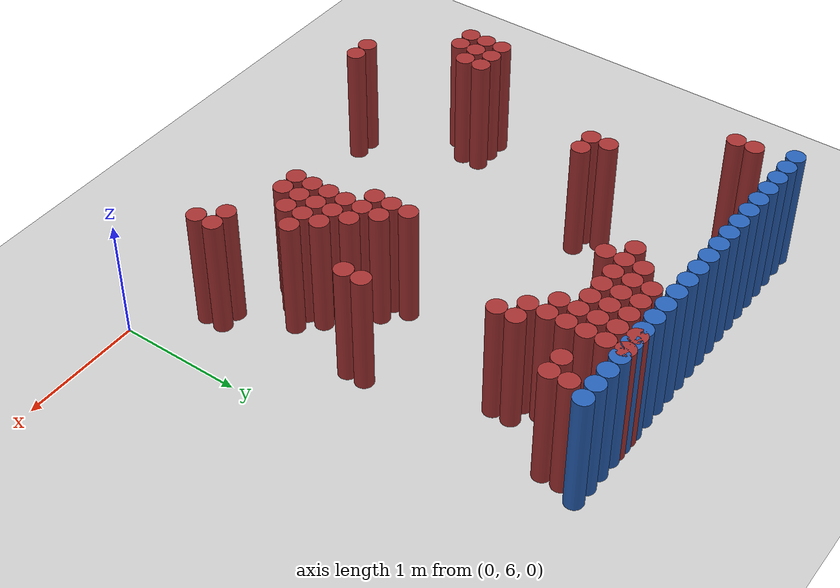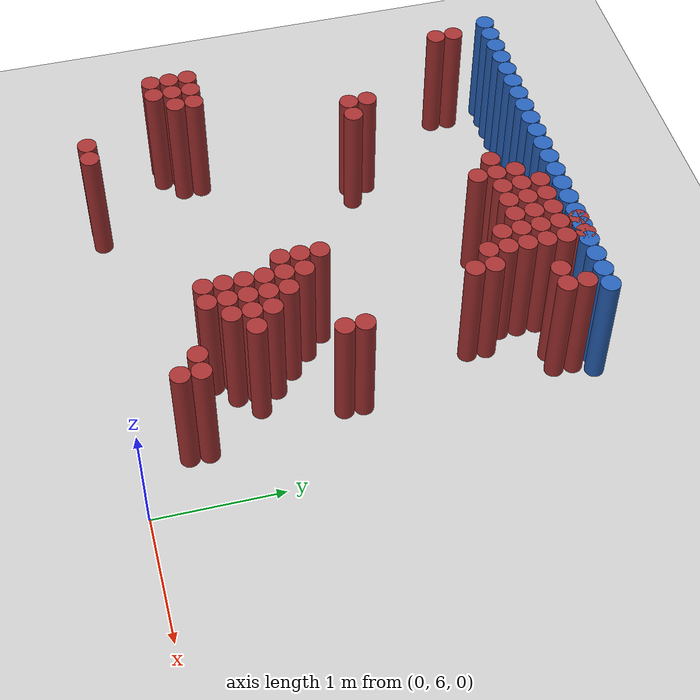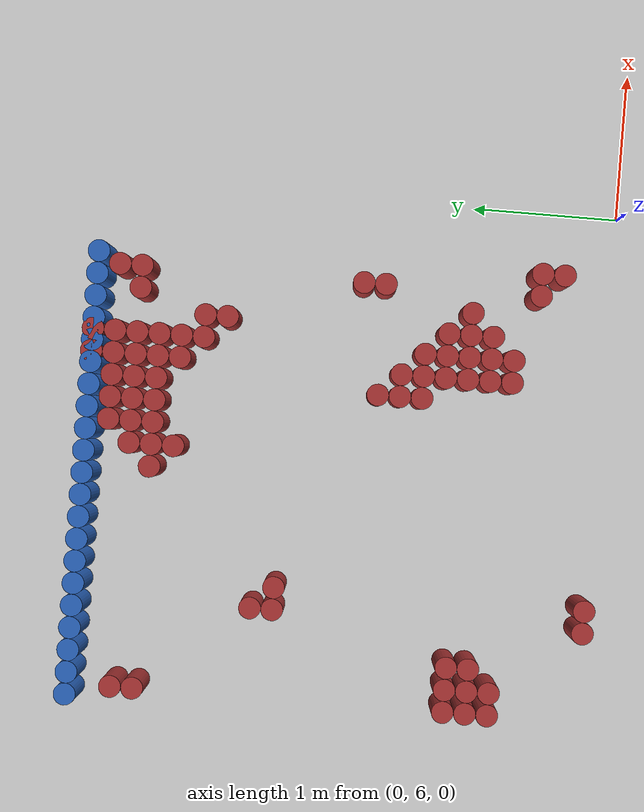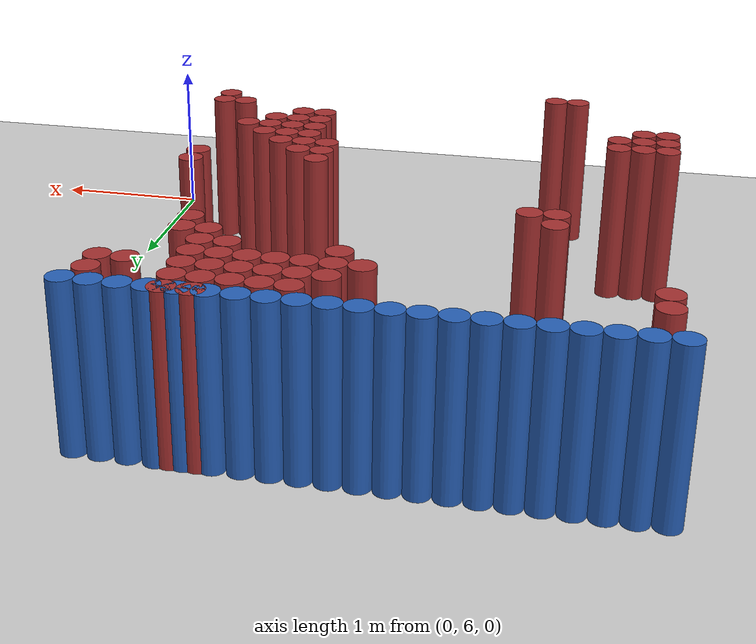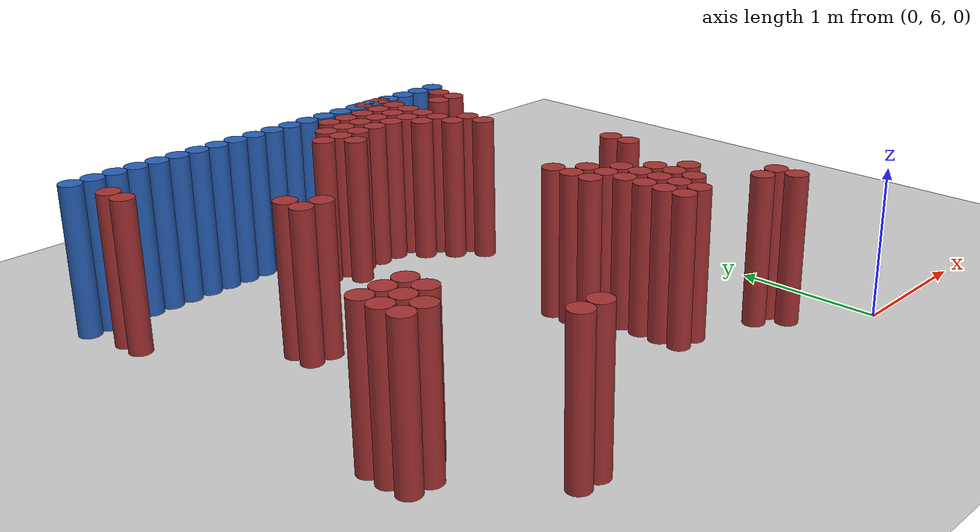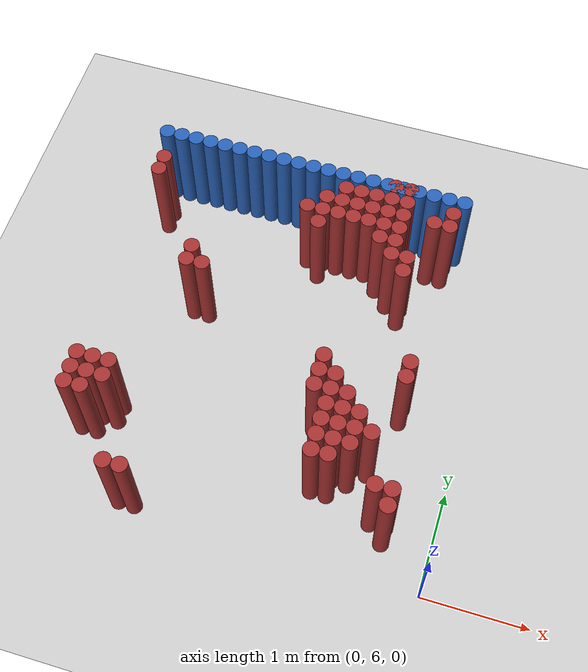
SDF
<sdf version="1.6">
 <world name="barn_world">
  <model name="ground_plane">
   <static>1</static>
   <link name="link">
    <collision name="collision">
     <geometry><plane><normal>0 0 1</normal><size>100 100</size></plane></geometry>
    </collision>
    <visual name="visual">
     <geometry><plane><normal>0 0 1</normal><size>100 100</size></plane></geometry>
     <material>
      <script><uri>file://media/materials/scripts/gazebo.material</uri><name>Gazebo/Grey</name></script>
     </material>
    </visual>
   </link>
  </model>
  <model name="unit_cylinder_210">
   <static>1</static>
   <pose>-3.4500 6.6750 0.5 0 0 0</pose>
   <link name="link">
    <collision name="collision">
     <geometry><cylinder><radius>0.075</radius><length>1</length></cylinder></geometry>
    </collision>
    <visual name="visual">
     <geometry><cylinder><radius>0.075</radius><length>1</length></cylinder></geometry>
     <material><ambient>0.648 0.192 0.192 1</ambient><diffuse>0.648 0.192 0.192 1</diffuse></material>
    </visual>
   </link>
  </model>
  <model name="unit_cylinder_211">
   <static>1</static>
   <pose>-3.4500 6.8250 0.5 0 0 0</pose>
   <link name="link">
    <collision name="collision">
     <geometry><cylinder><radius>0.075</radius><length>1</length></cylinder></geometry>
    </collision>
    <visual name="visual">
     <geometry><cylinder><radius>0.075</radius><length>1</length></cylinder></geometry>
     <material><ambient>0.648 0.192 0.192 1</ambient><diffuse>0.648 0.192 0.192 1</diffuse></material>
    </visual>
   </link>
  </model>
  <model name="unit_cylinder_212">
   <static>1</static>
   <pose>-3.4500 6.9750 0.5 0 0 0</pose>
   <link name="link">
    <collision name="collision">
     <geometry><cylinder><radius>0.075</radius><length>1</length></cylinder></geometry>
    </collision>
    <visual name="visual">
     <geometry><cylinder><radius>0.075</radius><length>1</length></cylinder></geometry>
     <material><ambient>0.648 0.192 0.192 1</ambient><diffuse>0.648 0.192 0.192 1</diffuse></material>
    </visual>
   </link>
  </model>
  <model name="unit_cylinder_213">
   <static>1</static>
   <pose>-3.4500 9.0750 0.5 0 0 0</pose>
   <link name="link">
    <collision name="collision">
     <geometry><cylinder><radius>0.075</radius><length>1</length></cylinder></geometry>
    </collision>
    <visual name="visual">
     <geometry><cylinder><radius>0.075</radius><length>1</length></cylinder></geometry>
     <material><ambient>0.648 0.192 0.192 1</ambient><diffuse>0.648 0.192 0.192 1</diffuse></material>
    </visual>
   </link>
  </model>
  <model name="unit_cylinder_214">
   <static>1</static>
   <pose>-3.4500 9.2250 0.5 0 0 0</pose>
   <link name="link">
    <collision name="collision">
     <geometry><cylinder><radius>0.075</radius><length>1</length></cylinder></geometry>
    </collision>
    <visual name="visual">
     <geometry><cylinder><radius>0.075</radius><length>1</length></cylinder></geometry>
     <material><ambient>0.648 0.192 0.192 1</ambient><diffuse>0.648 0.192 0.192 1</diffuse></material>
    </visual>
   </link>
  </model>
  <model name="unit_cylinder_216">
   <static>1</static>
   <pose>-3.3000 6.6750 0.5 0 0 0</pose>
   <link name="link">
    <collision name="collision">
     <geometry><cylinder><radius>0.075</radius><length>1</length></cylinder></geometry>
    </collision>
    <visual name="visual">
     <geometry><cylinder><radius>0.075</radius><length>1</length></cylinder></geometry>
     <material><ambient>0.648 0.192 0.192 1</ambient><diffuse>0.648 0.192 0.192 1</diffuse></material>
    </visual>
   </link>
  </model>
  <model name="unit_cylinder_217">
   <static>1</static>
   <pose>-3.3000 6.8250 0.5 0 0 0</pose>
   <link name="link">
    <collision name="collision">
     <geometry><cylinder><radius>0.075</radius><length>1</length></cylinder></geometry>
    </collision>
    <visual name="visual">
     <geometry><cylinder><radius>0.075</radius><length>1</length></cylinder></geometry>
     <material><ambient>0.648 0.192 0.192 1</ambient><diffuse>0.648 0.192 0.192 1</diffuse></material>
    </visual>
   </link>
  </model>
  <model name="unit_cylinder_218">
   <static>1</static>
   <pose>-3.3000 6.9750 0.5 0 0 0</pose>
   <link name="link">
    <collision name="collision">
     <geometry><cylinder><radius>0.075</radius><length>1</length></cylinder></geometry>
    </collision>
    <visual name="visual">
     <geometry><cylinder><radius>0.075</radius><length>1</length></cylinder></geometry>
     <material><ambient>0.648 0.192 0.192 1</ambient><diffuse>0.648 0.192 0.192 1</diffuse></material>
    </visual>
   </link>
  </model>
  <model name="unit_cylinder_220">
   <static>1</static>
   <pose>-3.1500 6.8250 0.5 0 0 0</pose>
   <link name="link">
    <collision name="collision">
     <geometry><cylinder><radius>0.075</radius><length>1</length></cylinder></geometry>
    </collision>
    <visual name="visual">
     <geometry><cylinder><radius>0.075</radius><length>1</length></cylinder></geometry>
     <material><ambient>0.648 0.192 0.192 1</ambient><diffuse>0.648 0.192 0.192 1</diffuse></material>
    </visual>
   </link>
  </model>
  <model name="unit_cylinder_221">
   <static>1</static>
   <pose>-3.1500 6.9750 0.5 0 0 0</pose>
   <link name="link">
    <collision name="collision">
     <geometry><cylinder><radius>0.075</radius><length>1</length></cylinder></geometry>
    </collision>
    <visual name="visual">
     <geometry><cylinder><radius>0.075</radius><length>1</length></cylinder></geometry>
     <material><ambient>0.648 0.192 0.192 1</ambient><diffuse>0.648 0.192 0.192 1</diffuse></material>
    </visual>
   </link>
  </model>
  <model name="unit_cylinder_225">
   <static>1</static>
   <pose>-2.8500 6.0750 0.5 0 0 0</pose>
   <link name="link">
    <collision name="collision">
     <geometry><cylinder><radius>0.075</radius><length>1</length></cylinder></geometry>
    </collision>
    <visual name="visual">
     <geometry><cylinder><radius>0.075</radius><length>1</length></cylinder></geometry>
     <material><ambient>0.648 0.192 0.192 1</ambient><diffuse>0.648 0.192 0.192 1</diffuse></material>
    </visual>
   </link>
  </model>
  <model name="unit_cylinder_226">
   <static>1</static>
   <pose>-2.8500 8.1750 0.5 0 0 0</pose>
   <link name="link">
    <collision name="collision">
     <geometry><cylinder><radius>0.075</radius><length>1</length></cylinder></geometry>
    </collision>
    <visual name="visual">
     <geometry><cylinder><radius>0.075</radius><length>1</length></cylinder></geometry>
     <material><ambient>0.648 0.192 0.192 1</ambient><diffuse>0.648 0.192 0.192 1</diffuse></material>
    </visual>
   </link>
  </model>
  <model name="unit_cylinder_227">
   <static>1</static>
   <pose>-2.8500 8.3250 0.5 0 0 0</pose>
   <link name="link">
    <collision name="collision">
     <geometry><cylinder><radius>0.075</radius><length>1</length></cylinder></geometry>
    </collision>
    <visual name="visual">
     <geometry><cylinder><radius>0.075</radius><length>1</length></cylinder></geometry>
     <material><ambient>0.648 0.192 0.192 1</ambient><diffuse>0.648 0.192 0.192 1</diffuse></material>
    </visual>
   </link>
  </model>
  <model name="unit_cylinder_228">
   <static>1</static>
   <pose>-2.7000 6.0750 0.5 0 0 0</pose>
   <link name="link">
    <collision name="collision">
     <geometry><cylinder><radius>0.075</radius><length>1</length></cylinder></geometry>
    </collision>
    <visual name="visual">
     <geometry><cylinder><radius>0.075</radius><length>1</length></cylinder></geometry>
     <material><ambient>0.648 0.192 0.192 1</ambient><diffuse>0.648 0.192 0.192 1</diffuse></material>
    </visual>
   </link>
  </model>
  <model name="unit_cylinder_229">
   <static>1</static>
   <pose>-2.7000 8.1750 0.5 0 0 0</pose>
   <link name="link">
    <collision name="collision">
     <geometry><cylinder><radius>0.075</radius><length>1</length></cylinder></geometry>
    </collision>
    <visual name="visual">
     <geometry><cylinder><radius>0.075</radius><length>1</length></cylinder></geometry>
     <material><ambient>0.648 0.192 0.192 1</ambient><diffuse>0.648 0.192 0.192 1</diffuse></material>
    </visual>
   </link>
  </model>
  <model name="unit_cylinder_230">
   <static>1</static>
   <pose>-1.9500 9.0750 0.5 0 0 0</pose>
   <link name="link">
    <collision name="collision">
     <geometry><cylinder><radius>0.075</radius><length>1</length></cylinder></geometry>
    </collision>
    <visual name="visual">
     <geometry><cylinder><radius>0.075</radius><length>1</length></cylinder></geometry>
     <material><ambient>0.648 0.192 0.192 1</ambient><diffuse>0.648 0.192 0.192 1</diffuse></material>
    </visual>
   </link>
  </model>
  <model name="unit_cylinder_231">
   <static>1</static>
   <pose>-1.8000 8.9250 0.5 0 0 0</pose>
   <link name="link">
    <collision name="collision">
     <geometry><cylinder><radius>0.075</radius><length>1</length></cylinder></geometry>
    </collision>
    <visual name="visual">
     <geometry><cylinder><radius>0.075</radius><length>1</length></cylinder></geometry>
     <material><ambient>0.648 0.192 0.192 1</ambient><diffuse>0.648 0.192 0.192 1</diffuse></material>
    </visual>
   </link>
  </model>
  <model name="unit_cylinder_232">
   <static>1</static>
   <pose>-1.8000 9.0750 0.5 0 0 0</pose>
   <link name="link">
    <collision name="collision">
     <geometry><cylinder><radius>0.075</radius><length>1</length></cylinder></geometry>
    </collision>
    <visual name="visual">
     <geometry><cylinder><radius>0.075</radius><length>1</length></cylinder></geometry>
     <material><ambient>0.648 0.192 0.192 1</ambient><diffuse>0.648 0.192 0.192 1</diffuse></material>
    </visual>
   </link>
  </model>
  <model name="unit_cylinder_233">
   <static>1</static>
   <pose>-1.8000 9.2250 0.5 0 0 0</pose>
   <link name="link">
    <collision name="collision">
     <geometry><cylinder><radius>0.075</radius><length>1</length></cylinder></geometry>
    </collision>
    <visual name="visual">
     <geometry><cylinder><radius>0.075</radius><length>1</length></cylinder></geometry>
     <material><ambient>0.648 0.192 0.192 1</ambient><diffuse>0.648 0.192 0.192 1</diffuse></material>
    </visual>
   </link>
  </model>
  <model name="unit_cylinder_234">
   <static>1</static>
   <pose>-1.6500 9.0750 0.5 0 0 0</pose>
   <link name="link">
    <collision name="collision">
     <geometry><cylinder><radius>0.075</radius><length>1</length></cylinder></geometry>
    </collision>
    <visual name="visual">
     <geometry><cylinder><radius>0.075</radius><length>1</length></cylinder></geometry>
     <material><ambient>0.648 0.192 0.192 1</ambient><diffuse>0.648 0.192 0.192 1</diffuse></material>
    </visual>
   </link>
  </model>
  <model name="unit_cylinder_235">
   <static>1</static>
   <pose>-1.6500 9.2250 0.5 0 0 0</pose>
   <link name="link">
    <collision name="collision">
     <geometry><cylinder><radius>0.075</radius><length>1</length></cylinder></geometry>
    </collision>
    <visual name="visual">
     <geometry><cylinder><radius>0.075</radius><length>1</length></cylinder></geometry>
     <material><ambient>0.648 0.192 0.192 1</ambient><diffuse>0.648 0.192 0.192 1</diffuse></material>
    </visual>
   </link>
  </model>
  <model name="unit_cylinder_236">
   <static>1</static>
   <pose>-1.6500 9.3750 0.5 0 0 0</pose>
   <link name="link">
    <collision name="collision">
     <geometry><cylinder><radius>0.075</radius><length>1</length></cylinder></geometry>
    </collision>
    <visual name="visual">
     <geometry><cylinder><radius>0.075</radius><length>1</length></cylinder></geometry>
     <material><ambient>0.648 0.192 0.192 1</ambient><diffuse>0.648 0.192 0.192 1</diffuse></material>
    </visual>
   </link>
  </model>
  <model name="unit_cylinder_237">
   <static>1</static>
   <pose>-1.5000 9.0750 0.5 0 0 0</pose>
   <link name="link">
    <collision name="collision">
     <geometry><cylinder><radius>0.075</radius><length>1</length></cylinder></geometry>
    </collision>
    <visual name="visual">
     <geometry><cylinder><radius>0.075</radius><length>1</length></cylinder></geometry>
     <material><ambient>0.648 0.192 0.192 1</ambient><diffuse>0.648 0.192 0.192 1</diffuse></material>
    </visual>
   </link>
  </model>
  <model name="unit_cylinder_238">
   <static>1</static>
   <pose>-1.5000 9.2250 0.5 0 0 0</pose>
   <link name="link">
    <collision name="collision">
     <geometry><cylinder><radius>0.075</radius><length>1</length></cylinder></geometry>
    </collision>
    <visual name="visual">
     <geometry><cylinder><radius>0.075</radius><length>1</length></cylinder></geometry>
     <material><ambient>0.648 0.192 0.192 1</ambient><diffuse>0.648 0.192 0.192 1</diffuse></material>
    </visual>
   </link>
  </model>
  <model name="unit_cylinder_239">
   <static>1</static>
   <pose>-1.5000 9.3750 0.5 0 0 0</pose>
   <link name="link">
    <collision name="collision">
     <geometry><cylinder><radius>0.075</radius><length>1</length></cylinder></geometry>
    </collision>
    <visual name="visual">
     <geometry><cylinder><radius>0.075</radius><length>1</length></cylinder></geometry>
     <material><ambient>0.648 0.192 0.192 1</ambient><diffuse>0.648 0.192 0.192 1</diffuse></material>
    </visual>
   </link>
  </model>
  <model name="unit_cylinder_240">
   <static>1</static>
   <pose>-1.3500 7.2750 0.5 0 0 0</pose>
   <link name="link">
    <collision name="collision">
     <geometry><cylinder><radius>0.075</radius><length>1</length></cylinder></geometry>
    </collision>
    <visual name="visual">
     <geometry><cylinder><radius>0.075</radius><length>1</length></cylinder></geometry>
     <material><ambient>0.648 0.192 0.192 1</ambient><diffuse>0.648 0.192 0.192 1</diffuse></material>
    </visual>
   </link>
  </model>
  <model name="unit_cylinder_241">
   <static>1</static>
   <pose>-1.3500 7.4250 0.5 0 0 0</pose>
   <link name="link">
    <collision name="collision">
     <geometry><cylinder><radius>0.075</radius><length>1</length></cylinder></geometry>
    </collision>
    <visual name="visual">
     <geometry><cylinder><radius>0.075</radius><length>1</length></cylinder></geometry>
     <material><ambient>0.648 0.192 0.192 1</ambient><diffuse>0.648 0.192 0.192 1</diffuse></material>
    </visual>
   </link>
  </model>
  <model name="unit_cylinder_242">
   <static>1</static>
   <pose>-1.3500 7.5750 0.5 0 0 0</pose>
   <link name="link">
    <collision name="collision">
     <geometry><cylinder><radius>0.075</radius><length>1</length></cylinder></geometry>
    </collision>
    <visual name="visual">
     <geometry><cylinder><radius>0.075</radius><length>1</length></cylinder></geometry>
     <material><ambient>0.648 0.192 0.192 1</ambient><diffuse>0.648 0.192 0.192 1</diffuse></material>
    </visual>
   </link>
  </model>
  <model name="unit_cylinder_243">
   <static>1</static>
   <pose>-1.3500 9.0750 0.5 0 0 0</pose>
   <link name="link">
    <collision name="collision">
     <geometry><cylinder><radius>0.075</radius><length>1</length></cylinder></geometry>
    </collision>
    <visual name="visual">
     <geometry><cylinder><radius>0.075</radius><length>1</length></cylinder></geometry>
     <material><ambient>0.648 0.192 0.192 1</ambient><diffuse>0.648 0.192 0.192 1</diffuse></material>
    </visual>
   </link>
  </model>
  <model name="unit_cylinder_244">
   <static>1</static>
   <pose>-1.3500 9.2250 0.5 0 0 0</pose>
   <link name="link">
    <collision name="collision">
     <geometry><cylinder><radius>0.075</radius><length>1</length></cylinder></geometry>
    </collision>
    <visual name="visual">
     <geometry><cylinder><radius>0.075</radius><length>1</length></cylinder></geometry>
     <material><ambient>0.648 0.192 0.192 1</ambient><diffuse>0.648 0.192 0.192 1</diffuse></material>
    </visual>
   </link>
  </model>
  <model name="unit_cylinder_245">
   <static>1</static>
   <pose>-1.3500 9.3750 0.5 0 0 0</pose>
   <link name="link">
    <collision name="collision">
     <geometry><cylinder><radius>0.075</radius><length>1</length></cylinder></geometry>
    </collision>
    <visual name="visual">
     <geometry><cylinder><radius>0.075</radius><length>1</length></cylinder></geometry>
     <material><ambient>0.648 0.192 0.192 1</ambient><diffuse>0.648 0.192 0.192 1</diffuse></material>
    </visual>
   </link>
  </model>
  <model name="unit_cylinder_246">
   <static>1</static>
   <pose>-1.2000 6.6750 0.5 0 0 0</pose>
   <link name="link">
    <collision name="collision">
     <geometry><cylinder><radius>0.075</radius><length>1</length></cylinder></geometry>
    </collision>
    <visual name="visual">
     <geometry><cylinder><radius>0.075</radius><length>1</length></cylinder></geometry>
     <material><ambient>0.648 0.192 0.192 1</ambient><diffuse>0.648 0.192 0.192 1</diffuse></material>
    </visual>
   </link>
  </model>
  <model name="unit_cylinder_247">
   <static>1</static>
   <pose>-1.2000 6.8250 0.5 0 0 0</pose>
   <link name="link">
    <collision name="collision">
     <geometry><cylinder><radius>0.075</radius><length>1</length></cylinder></geometry>
    </collision>
    <visual name="visual">
     <geometry><cylinder><radius>0.075</radius><length>1</length></cylinder></geometry>
     <material><ambient>0.648 0.192 0.192 1</ambient><diffuse>0.648 0.192 0.192 1</diffuse></material>
    </visual>
   </link>
  </model>
  <model name="unit_cylinder_248">
   <static>1</static>
   <pose>-1.2000 6.9750 0.5 0 0 0</pose>
   <link name="link">
    <collision name="collision">
     <geometry><cylinder><radius>0.075</radius><length>1</length></cylinder></geometry>
    </collision>
    <visual name="visual">
     <geometry><cylinder><radius>0.075</radius><length>1</length></cylinder></geometry>
     <material><ambient>0.648 0.192 0.192 1</ambient><diffuse>0.648 0.192 0.192 1</diffuse></material>
    </visual>
   </link>
  </model>
  <model name="unit_cylinder_249">
   <static>1</static>
   <pose>-1.2000 7.1250 0.5 0 0 0</pose>
   <link name="link">
    <collision name="collision">
     <geometry><cylinder><radius>0.075</radius><length>1</length></cylinder></geometry>
    </collision>
    <visual name="visual">
     <geometry><cylinder><radius>0.075</radius><length>1</length></cylinder></geometry>
     <material><ambient>0.648 0.192 0.192 1</ambient><diffuse>0.648 0.192 0.192 1</diffuse></material>
    </visual>
   </link>
  </model>
  <model name="unit_cylinder_250">
   <static>1</static>
   <pose>-1.2000 7.2750 0.5 0 0 0</pose>
   <link name="link">
    <collision name="collision">
     <geometry><cylinder><radius>0.075</radius><length>1</length></cylinder></geometry>
    </collision>
    <visual name="visual">
     <geometry><cylinder><radius>0.075</radius><length>1</length></cylinder></geometry>
     <material><ambient>0.648 0.192 0.192 1</ambient><diffuse>0.648 0.192 0.192 1</diffuse></material>
    </visual>
   </link>
  </model>
  <model name="unit_cylinder_251">
   <static>1</static>
   <pose>-1.2000 7.4250 0.5 0 0 0</pose>
   <link name="link">
    <collision name="collision">
     <geometry><cylinder><radius>0.075</radius><length>1</length></cylinder></geometry>
    </collision>
    <visual name="visual">
     <geometry><cylinder><radius>0.075</radius><length>1</length></cylinder></geometry>
     <material><ambient>0.648 0.192 0.192 1</ambient><diffuse>0.648 0.192 0.192 1</diffuse></material>
    </visual>
   </link>
  </model>
  <model name="unit_cylinder_252">
   <static>1</static>
   <pose>-1.2000 8.9250 0.5 0 0 0</pose>
   <link name="link">
    <collision name="collision">
     <geometry><cylinder><radius>0.075</radius><length>1</length></cylinder></geometry>
    </collision>
    <visual name="visual">
     <geometry><cylinder><radius>0.075</radius><length>1</length></cylinder></geometry>
     <material><ambient>0.648 0.192 0.192 1</ambient><diffuse>0.648 0.192 0.192 1</diffuse></material>
    </visual>
   </link>
  </model>
  <model name="unit_cylinder_253">
   <static>1</static>
   <pose>-1.2000 9.0750 0.5 0 0 0</pose>
   <link name="link">
    <collision name="collision">
     <geometry><cylinder><radius>0.075</radius><length>1</length></cylinder></geometry>
    </collision>
    <visual name="visual">
     <geometry><cylinder><radius>0.075</radius><length>1</length></cylinder></geometry>
     <material><ambient>0.648 0.192 0.192 1</ambient><diffuse>0.648 0.192 0.192 1</diffuse></material>
    </visual>
   </link>
  </model>
  <model name="unit_cylinder_254">
   <static>1</static>
   <pose>-1.2000 9.2250 0.5 0 0 0</pose>
   <link name="link">
    <collision name="collision">
     <geometry><cylinder><radius>0.075</radius><length>1</length></cylinder></geometry>
    </collision>
    <visual name="visual">
     <geometry><cylinder><radius>0.075</radius><length>1</length></cylinder></geometry>
     <material><ambient>0.648 0.192 0.192 1</ambient><diffuse>0.648 0.192 0.192 1</diffuse></material>
    </visual>
   </link>
  </model>
  <model name="unit_cylinder_255">
   <static>1</static>
   <pose>-1.2000 9.3750 0.5 0 0 0</pose>
   <link name="link">
    <collision name="collision">
     <geometry><cylinder><radius>0.075</radius><length>1</length></cylinder></geometry>
    </collision>
    <visual name="visual">
     <geometry><cylinder><radius>0.075</radius><length>1</length></cylinder></geometry>
     <material><ambient>0.648 0.192 0.192 1</ambient><diffuse>0.648 0.192 0.192 1</diffuse></material>
    </visual>
   </link>
  </model>
  <model name="unit_cylinder_256">
   <static>1</static>
   <pose>-1.2000 9.5250 0.5 0 0 0</pose>
   <link name="link">
    <collision name="collision">
     <geometry><cylinder><radius>0.075</radius><length>1</length></cylinder></geometry>
    </collision>
    <visual name="visual">
     <geometry><cylinder><radius>0.075</radius><length>1</length></cylinder></geometry>
     <material><ambient>0.648 0.192 0.192 1</ambient><diffuse>0.648 0.192 0.192 1</diffuse></material>
    </visual>
   </link>
  </model>
  <model name="unit_cylinder_258">
   <static>1</static>
   <pose>-1.0500 6.6750 0.5 0 0 0</pose>
   <link name="link">
    <collision name="collision">
     <geometry><cylinder><radius>0.075</radius><length>1</length></cylinder></geometry>
    </collision>
    <visual name="visual">
     <geometry><cylinder><radius>0.075</radius><length>1</length></cylinder></geometry>
     <material><ambient>0.648 0.192 0.192 1</ambient><diffuse>0.648 0.192 0.192 1</diffuse></material>
    </visual>
   </link>
  </model>
  <model name="unit_cylinder_259">
   <static>1</static>
   <pose>-1.0500 6.8250 0.5 0 0 0</pose>
   <link name="link">
    <collision name="collision">
     <geometry><cylinder><radius>0.075</radius><length>1</length></cylinder></geometry>
    </collision>
    <visual name="visual">
     <geometry><cylinder><radius>0.075</radius><length>1</length></cylinder></geometry>
     <material><ambient>0.648 0.192 0.192 1</ambient><diffuse>0.648 0.192 0.192 1</diffuse></material>
    </visual>
   </link>
  </model>
  <model name="unit_cylinder_260">
   <static>1</static>
   <pose>-1.0500 6.9750 0.5 0 0 0</pose>
   <link name="link">
    <collision name="collision">
     <geometry><cylinder><radius>0.075</radius><length>1</length></cylinder></geometry>
    </collision>
    <visual name="visual">
     <geometry><cylinder><radius>0.075</radius><length>1</length></cylinder></geometry>
     <material><ambient>0.648 0.192 0.192 1</ambient><diffuse>0.648 0.192 0.192 1</diffuse></material>
    </visual>
   </link>
  </model>
  <model name="unit_cylinder_261">
   <static>1</static>
   <pose>-1.0500 7.1250 0.5 0 0 0</pose>
   <link name="link">
    <collision name="collision">
     <geometry><cylinder><radius>0.075</radius><length>1</length></cylinder></geometry>
    </collision>
    <visual name="visual">
     <geometry><cylinder><radius>0.075</radius><length>1</length></cylinder></geometry>
     <material><ambient>0.648 0.192 0.192 1</ambient><diffuse>0.648 0.192 0.192 1</diffuse></material>
    </visual>
   </link>
  </model>
  <model name="unit_cylinder_262">
   <static>1</static>
   <pose>-1.0500 7.2750 0.5 0 0 0</pose>
   <link name="link">
    <collision name="collision">
     <geometry><cylinder><radius>0.075</radius><length>1</length></cylinder></geometry>
    </collision>
    <visual name="visual">
     <geometry><cylinder><radius>0.075</radius><length>1</length></cylinder></geometry>
     <material><ambient>0.648 0.192 0.192 1</ambient><diffuse>0.648 0.192 0.192 1</diffuse></material>
    </visual>
   </link>
  </model>
  <model name="unit_cylinder_263">
   <static>1</static>
   <pose>-1.0500 8.7750 0.5 0 0 0</pose>
   <link name="link">
    <collision name="collision">
     <geometry><cylinder><radius>0.075</radius><length>1</length></cylinder></geometry>
    </collision>
    <visual name="visual">
     <geometry><cylinder><radius>0.075</radius><length>1</length></cylinder></geometry>
     <material><ambient>0.648 0.192 0.192 1</ambient><diffuse>0.648 0.192 0.192 1</diffuse></material>
    </visual>
   </link>
  </model>
  <model name="unit_cylinder_264">
   <static>1</static>
   <pose>-1.0500 8.9250 0.5 0 0 0</pose>
   <link name="link">
    <collision name="collision">
     <geometry><cylinder><radius>0.075</radius><length>1</length></cylinder></geometry>
    </collision>
    <visual name="visual">
     <geometry><cylinder><radius>0.075</radius><length>1</length></cylinder></geometry>
     <material><ambient>0.648 0.192 0.192 1</ambient><diffuse>0.648 0.192 0.192 1</diffuse></material>
    </visual>
   </link>
  </model>
  <model name="unit_cylinder_265">
   <static>1</static>
   <pose>-1.0500 9.0750 0.5 0 0 0</pose>
   <link name="link">
    <collision name="collision">
     <geometry><cylinder><radius>0.075</radius><length>1</length></cylinder></geometry>
    </collision>
    <visual name="visual">
     <geometry><cylinder><radius>0.075</radius><length>1</length></cylinder></geometry>
     <material><ambient>0.648 0.192 0.192 1</ambient><diffuse>0.648 0.192 0.192 1</diffuse></material>
    </visual>
   </link>
  </model>
  <model name="unit_cylinder_266">
   <static>1</static>
   <pose>-1.0500 9.2250 0.5 0 0 0</pose>
   <link name="link">
    <collision name="collision">
     <geometry><cylinder><radius>0.075</radius><length>1</length></cylinder></geometry>
    </collision>
    <visual name="visual">
     <geometry><cylinder><radius>0.075</radius><length>1</length></cylinder></geometry>
     <material><ambient>0.648 0.192 0.192 1</ambient><diffuse>0.648 0.192 0.192 1</diffuse></material>
    </visual>
   </link>
  </model>
  <model name="unit_cylinder_267">
   <static>1</static>
   <pose>-1.0500 9.3750 0.5 0 0 0</pose>
   <link name="link">
    <collision name="collision">
     <geometry><cylinder><radius>0.075</radius><length>1</length></cylinder></geometry>
    </collision>
    <visual name="visual">
     <geometry><cylinder><radius>0.075</radius><length>1</length></cylinder></geometry>
     <material><ambient>0.648 0.192 0.192 1</ambient><diffuse>0.648 0.192 0.192 1</diffuse></material>
    </visual>
   </link>
  </model>
  <model name="unit_cylinder_268">
   <static>1</static>
   <pose>-1.0500 9.5250 0.5 0 0 0</pose>
   <link name="link">
    <collision name="collision">
     <geometry><cylinder><radius>0.075</radius><length>1</length></cylinder></geometry>
    </collision>
    <visual name="visual">
     <geometry><cylinder><radius>0.075</radius><length>1</length></cylinder></geometry>
     <material><ambient>0.648 0.192 0.192 1</ambient><diffuse>0.648 0.192 0.192 1</diffuse></material>
    </visual>
   </link>
  </model>
  <model name="unit_cylinder_271">
   <static>1</static>
   <pose>-0.9000 6.8250 0.5 0 0 0</pose>
   <link name="link">
    <collision name="collision">
     <geometry><cylinder><radius>0.075</radius><length>1</length></cylinder></geometry>
    </collision>
    <visual name="visual">
     <geometry><cylinder><radius>0.075</radius><length>1</length></cylinder></geometry>
     <material><ambient>0.648 0.192 0.192 1</ambient><diffuse>0.648 0.192 0.192 1</diffuse></material>
    </visual>
   </link>
  </model>
  <model name="unit_cylinder_272">
   <static>1</static>
   <pose>-0.9000 6.9750 0.5 0 0 0</pose>
   <link name="link">
    <collision name="collision">
     <geometry><cylinder><radius>0.075</radius><length>1</length></cylinder></geometry>
    </collision>
    <visual name="visual">
     <geometry><cylinder><radius>0.075</radius><length>1</length></cylinder></geometry>
     <material><ambient>0.648 0.192 0.192 1</ambient><diffuse>0.648 0.192 0.192 1</diffuse></material>
    </visual>
   </link>
  </model>
  <model name="unit_cylinder_273">
   <static>1</static>
   <pose>-0.9000 7.1250 0.5 0 0 0</pose>
   <link name="link">
    <collision name="collision">
     <geometry><cylinder><radius>0.075</radius><length>1</length></cylinder></geometry>
    </collision>
    <visual name="visual">
     <geometry><cylinder><radius>0.075</radius><length>1</length></cylinder></geometry>
     <material><ambient>0.648 0.192 0.192 1</ambient><diffuse>0.648 0.192 0.192 1</diffuse></material>
    </visual>
   </link>
  </model>
  <model name="unit_cylinder_274">
   <static>1</static>
   <pose>-0.9000 8.6250 0.5 0 0 0</pose>
   <link name="link">
    <collision name="collision">
     <geometry><cylinder><radius>0.075</radius><length>1</length></cylinder></geometry>
    </collision>
    <visual name="visual">
     <geometry><cylinder><radius>0.075</radius><length>1</length></cylinder></geometry>
     <material><ambient>0.648 0.192 0.192 1</ambient><diffuse>0.648 0.192 0.192 1</diffuse></material>
    </visual>
   </link>
  </model>
  <model name="unit_cylinder_275">
   <static>1</static>
   <pose>-0.9000 8.7750 0.5 0 0 0</pose>
   <link name="link">
    <collision name="collision">
     <geometry><cylinder><radius>0.075</radius><length>1</length></cylinder></geometry>
    </collision>
    <visual name="visual">
     <geometry><cylinder><radius>0.075</radius><length>1</length></cylinder></geometry>
     <material><ambient>0.648 0.192 0.192 1</ambient><diffuse>0.648 0.192 0.192 1</diffuse></material>
    </visual>
   </link>
  </model>
  <model name="unit_cylinder_276">
   <static>1</static>
   <pose>-0.7500 6.9750 0.5 0 0 0</pose>
   <link name="link">
    <collision name="collision">
     <geometry><cylinder><radius>0.075</radius><length>1</length></cylinder></geometry>
    </collision>
    <visual name="visual">
     <geometry><cylinder><radius>0.075</radius><length>1</length></cylinder></geometry>
     <material><ambient>0.648 0.192 0.192 1</ambient><diffuse>0.648 0.192 0.192 1</diffuse></material>
    </visual>
   </link>
  </model>
  <model name="unit_cylinder_277">
   <static>1</static>
   <pose>-0.7500 9.2250 0.5 0 0 0</pose>
   <link name="link">
    <collision name="collision">
     <geometry><cylinder><radius>0.075</radius><length>1</length></cylinder></geometry>
    </collision>
    <visual name="visual">
     <geometry><cylinder><radius>0.075</radius><length>1</length></cylinder></geometry>
     <material><ambient>0.648 0.192 0.192 1</ambient><diffuse>0.648 0.192 0.192 1</diffuse></material>
    </visual>
   </link>
  </model>
  <model name="unit_cylinder_278">
   <static>1</static>
   <pose>-0.6000 6.5250 0.5 0 0 0</pose>
   <link name="link">
    <collision name="collision">
     <geometry><cylinder><radius>0.075</radius><length>1</length></cylinder></geometry>
    </collision>
    <visual name="visual">
     <geometry><cylinder><radius>0.075</radius><length>1</length></cylinder></geometry>
     <material><ambient>0.648 0.192 0.192 1</ambient><diffuse>0.648 0.192 0.192 1</diffuse></material>
    </visual>
   </link>
  </model>
  <model name="unit_cylinder_279">
   <static>1</static>
   <pose>-0.6000 7.5750 0.5 0 0 0</pose>
   <link name="link">
    <collision name="collision">
     <geometry><cylinder><radius>0.075</radius><length>1</length></cylinder></geometry>
    </collision>
    <visual name="visual">
     <geometry><cylinder><radius>0.075</radius><length>1</length></cylinder></geometry>
     <material><ambient>0.648 0.192 0.192 1</ambient><diffuse>0.648 0.192 0.192 1</diffuse></material>
    </visual>
   </link>
  </model>
  <model name="unit_cylinder_280">
   <static>1</static>
   <pose>-0.6000 7.7250 0.5 0 0 0</pose>
   <link name="link">
    <collision name="collision">
     <geometry><cylinder><radius>0.075</radius><length>1</length></cylinder></geometry>
    </collision>
    <visual name="visual">
     <geometry><cylinder><radius>0.075</radius><length>1</length></cylinder></geometry>
     <material><ambient>0.648 0.192 0.192 1</ambient><diffuse>0.648 0.192 0.192 1</diffuse></material>
    </visual>
   </link>
  </model>
  <model name="unit_cylinder_281">
   <static>1</static>
   <pose>-0.6000 9.2250 0.5 0 0 0</pose>
   <link name="link">
    <collision name="collision">
     <geometry><cylinder><radius>0.075</radius><length>1</length></cylinder></geometry>
    </collision>
    <visual name="visual">
     <geometry><cylinder><radius>0.075</radius><length>1</length></cylinder></geometry>
     <material><ambient>0.648 0.192 0.192 1</ambient><diffuse>0.648 0.192 0.192 1</diffuse></material>
    </visual>
   </link>
  </model>
  <model name="unit_cylinder_282">
   <static>1</static>
   <pose>-0.6000 9.3750 0.5 0 0 0</pose>
   <link name="link">
    <collision name="collision">
     <geometry><cylinder><radius>0.075</radius><length>1</length></cylinder></geometry>
    </collision>
    <visual name="visual">
     <geometry><cylinder><radius>0.075</radius><length>1</length></cylinder></geometry>
     <material><ambient>0.648 0.192 0.192 1</ambient><diffuse>0.648 0.192 0.192 1</diffuse></material>
    </visual>
   </link>
  </model>
  <model name="unit_cylinder_283">
   <static>1</static>
   <pose>-0.4500 6.3750 0.5 0 0 0</pose>
   <link name="link">
    <collision name="collision">
     <geometry><cylinder><radius>0.075</radius><length>1</length></cylinder></geometry>
    </collision>
    <visual name="visual">
     <geometry><cylinder><radius>0.075</radius><length>1</length></cylinder></geometry>
     <material><ambient>0.648 0.192 0.192 1</ambient><diffuse>0.648 0.192 0.192 1</diffuse></material>
    </visual>
   </link>
  </model>
  <model name="unit_cylinder_284">
   <static>1</static>
   <pose>-0.4500 6.5250 0.5 0 0 0</pose>
   <link name="link">
    <collision name="collision">
     <geometry><cylinder><radius>0.075</radius><length>1</length></cylinder></geometry>
    </collision>
    <visual name="visual">
     <geometry><cylinder><radius>0.075</radius><length>1</length></cylinder></geometry>
     <material><ambient>0.648 0.192 0.192 1</ambient><diffuse>0.648 0.192 0.192 1</diffuse></material>
    </visual>
   </link>
  </model>
  <model name="unit_cylinder_358">
   <static>1</static>
   <pose>-0.5250 9.5250 0.5 0 0 0</pose>
   <link name="link">
    <collision name="collision">
     <geometry><cylinder><radius>0.075</radius><length>1</length></cylinder></geometry>
    </collision>
    <visual name="visual">
     <geometry><cylinder><radius>0.075</radius><length>1</length></cylinder></geometry>
     <material><ambient>0.152 0.379 0.72 1</ambient><diffuse>0.152 0.379 0.72 1</diffuse></material>
    </visual>
   </link>
  </model>
  <model name="unit_cylinder_359">
   <static>1</static>
   <pose>-0.6750 9.5250 0.5 0 0 0</pose>
   <link name="link">
    <collision name="collision">
     <geometry><cylinder><radius>0.075</radius><length>1</length></cylinder></geometry>
    </collision>
    <visual name="visual">
     <geometry><cylinder><radius>0.075</radius><length>1</length></cylinder></geometry>
     <material><ambient>0.152 0.379 0.72 1</ambient><diffuse>0.152 0.379 0.72 1</diffuse></material>
    </visual>
   </link>
  </model>
  <model name="unit_cylinder_360">
   <static>1</static>
   <pose>-0.8250 9.5250 0.5 0 0 0</pose>
   <link name="link">
    <collision name="collision">
     <geometry><cylinder><radius>0.075</radius><length>1</length></cylinder></geometry>
    </collision>
    <visual name="visual">
     <geometry><cylinder><radius>0.075</radius><length>1</length></cylinder></geometry>
     <material><ambient>0.152 0.379 0.72 1</ambient><diffuse>0.152 0.379 0.72 1</diffuse></material>
    </visual>
   </link>
  </model>
  <model name="unit_cylinder_361">
   <static>1</static>
   <pose>-0.9750 9.5250 0.5 0 0 0</pose>
   <link name="link">
    <collision name="collision">
     <geometry><cylinder><radius>0.075</radius><length>1</length></cylinder></geometry>
    </collision>
    <visual name="visual">
     <geometry><cylinder><radius>0.075</radius><length>1</length></cylinder></geometry>
     <material><ambient>0.152 0.379 0.72 1</ambient><diffuse>0.152 0.379 0.72 1</diffuse></material>
    </visual>
   </link>
  </model>
  <model name="unit_cylinder_362">
   <static>1</static>
   <pose>-1.1250 9.5250 0.5 0 0 0</pose>
   <link name="link">
    <collision name="collision">
     <geometry><cylinder><radius>0.075</radius><length>1</length></cylinder></geometry>
    </collision>
    <visual name="visual">
     <geometry><cylinder><radius>0.075</radius><length>1</length></cylinder></geometry>
     <material><ambient>0.152 0.379 0.72 1</ambient><diffuse>0.152 0.379 0.72 1</diffuse></material>
    </visual>
   </link>
  </model>
  <model name="unit_cylinder_363">
   <static>1</static>
   <pose>-1.2750 9.5250 0.5 0 0 0</pose>
   <link name="link">
    <collision name="collision">
     <geometry><cylinder><radius>0.075</radius><length>1</length></cylinder></geometry>
    </collision>
    <visual name="visual">
     <geometry><cylinder><radius>0.075</radius><length>1</length></cylinder></geometry>
     <material><ambient>0.152 0.379 0.72 1</ambient><diffuse>0.152 0.379 0.72 1</diffuse></material>
    </visual>
   </link>
  </model>
  <model name="unit_cylinder_364">
   <static>1</static>
   <pose>-1.4250 9.5250 0.5 0 0 0</pose>
   <link name="link">
    <collision name="collision">
     <geometry><cylinder><radius>0.075</radius><length>1</length></cylinder></geometry>
    </collision>
    <visual name="visual">
     <geometry><cylinder><radius>0.075</radius><length>1</length></cylinder></geometry>
     <material><ambient>0.152 0.379 0.72 1</ambient><diffuse>0.152 0.379 0.72 1</diffuse></material>
    </visual>
   </link>
  </model>
  <model name="unit_cylinder_365">
   <static>1</static>
   <pose>-1.5750 9.5250 0.5 0 0 0</pose>
   <link name="link">
    <collision name="collision">
     <geometry><cylinder><radius>0.075</radius><length>1</length></cylinder></geometry>
    </collision>
    <visual name="visual">
     <geometry><cylinder><radius>0.075</radius><length>1</length></cylinder></geometry>
     <material><ambient>0.152 0.379 0.72 1</ambient><diffuse>0.152 0.379 0.72 1</diffuse></material>
    </visual>
   </link>
  </model>
  <model name="unit_cylinder_366">
   <static>1</static>
   <pose>-1.7250 9.5250 0.5 0 0 0</pose>
   <link name="link">
    <collision name="collision">
     <geometry><cylinder><radius>0.075</radius><length>1</length></cylinder></geometry>
    </collision>
    <visual name="visual">
     <geometry><cylinder><radius>0.075</radius><length>1</length></cylinder></geometry>
     <material><ambient>0.152 0.379 0.72 1</ambient><diffuse>0.152 0.379 0.72 1</diffuse></material>
    </visual>
   </link>
  </model>
  <model name="unit_cylinder_367">
   <static>1</static>
   <pose>-1.8750 9.5250 0.5 0 0 0</pose>
   <link name="link">
    <collision name="collision">
     <geometry><cylinder><radius>0.075</radius><length>1</length></cylinder></geometry>
    </collision>
    <visual name="visual">
     <geometry><cylinder><radius>0.075</radius><length>1</length></cylinder></geometry>
     <material><ambient>0.152 0.379 0.72 1</ambient><diffuse>0.152 0.379 0.72 1</diffuse></material>
    </visual>
   </link>
  </model>
  <model name="unit_cylinder_368">
   <static>1</static>
   <pose>-2.0250 9.5250 0.5 0 0 0</pose>
   <link name="link">
    <collision name="collision">
     <geometry><cylinder><radius>0.075</radius><length>1</length></cylinder></geometry>
    </collision>
    <visual name="visual">
     <geometry><cylinder><radius>0.075</radius><length>1</length></cylinder></geometry>
     <material><ambient>0.152 0.379 0.72 1</ambient><diffuse>0.152 0.379 0.72 1</diffuse></material>
    </visual>
   </link>
  </model>
  <model name="unit_cylinder_369">
   <static>1</static>
   <pose>-2.1750 9.5250 0.5 0 0 0</pose>
   <link name="link">
    <collision name="collision">
     <geometry><cylinder><radius>0.075</radius><length>1</length></cylinder></geometry>
    </collision>
    <visual name="visual">
     <geometry><cylinder><radius>0.075</radius><length>1</length></cylinder></geometry>
     <material><ambient>0.152 0.379 0.72 1</ambient><diffuse>0.152 0.379 0.72 1</diffuse></material>
    </visual>
   </link>
  </model>
  <model name="unit_cylinder_370">
   <static>1</static>
   <pose>-2.3250 9.5250 0.5 0 0 0</pose>
   <link name="link">
    <collision name="collision">
     <geometry><cylinder><radius>0.075</radius><length>1</length></cylinder></geometry>
    </collision>
    <visual name="visual">
     <geometry><cylinder><radius>0.075</radius><length>1</length></cylinder></geometry>
     <material><ambient>0.152 0.379 0.72 1</ambient><diffuse>0.152 0.379 0.72 1</diffuse></material>
    </visual>
   </link>
  </model>
  <model name="unit_cylinder_371">
   <static>1</static>
   <pose>-2.4750 9.5250 0.5 0 0 0</pose>
   <link name="link">
    <collision name="collision">
     <geometry><cylinder><radius>0.075</radius><length>1</length></cylinder></geometry>
    </collision>
    <visual name="visual">
     <geometry><cylinder><radius>0.075</radius><length>1</length></cylinder></geometry>
     <material><ambient>0.152 0.379 0.72 1</ambient><diffuse>0.152 0.379 0.72 1</diffuse></material>
    </visual>
   </link>
  </model>
  <model name="unit_cylinder_372">
   <static>1</static>
   <pose>-2.6250 9.5250 0.5 0 0 0</pose>
   <link name="link">
    <collision name="collision">
     <geometry><cylinder><radius>0.075</radius><length>1</length></cylinder></geometry>
    </collision>
    <visual name="visual">
     <geometry><cylinder><radius>0.075</radius><length>1</length></cylinder></geometry>
     <material><ambient>0.152 0.379 0.72 1</ambient><diffuse>0.152 0.379 0.72 1</diffuse></material>
    </visual>
   </link>
  </model>
  <model name="unit_cylinder_373">
   <static>1</static>
   <pose>-2.7750 9.5250 0.5 0 0 0</pose>
   <link name="link">
    <collision name="collision">
     <geometry><cylinder><radius>0.075</radius><length>1</length></cylinder></geometry>
    </collision>
    <visual name="visual">
     <geometry><cylinder><radius>0.075</radius><length>1</length></cylinder></geometry>
     <material><ambient>0.152 0.379 0.72 1</ambient><diffuse>0.152 0.379 0.72 1</diffuse></material>
    </visual>
   </link>
  </model>
  <model name="unit_cylinder_374">
   <static>1</static>
   <pose>-2.9250 9.5250 0.5 0 0 0</pose>
   <link name="link">
    <collision name="collision">
     <geometry><cylinder><radius>0.075</radius><length>1</length></cylinder></geometry>
    </collision>
    <visual name="visual">
     <geometry><cylinder><radius>0.075</radius><length>1</length></cylinder></geometry>
     <material><ambient>0.152 0.379 0.72 1</ambient><diffuse>0.152 0.379 0.72 1</diffuse></material>
    </visual>
   </link>
  </model>
  <model name="unit_cylinder_375">
   <static>1</static>
   <pose>-3.0750 9.5250 0.5 0 0 0</pose>
   <link name="link">
    <collision name="collision">
     <geometry><cylinder><radius>0.075</radius><length>1</length></cylinder></geometry>
    </collision>
    <visual name="visual">
     <geometry><cylinder><radius>0.075</radius><length>1</length></cylinder></geometry>
     <material><ambient>0.152 0.379 0.72 1</ambient><diffuse>0.152 0.379 0.72 1</diffuse></material>
    </visual>
   </link>
  </model>
  <model name="unit_cylinder_376">
   <static>1</static>
   <pose>-3.2250 9.5250 0.5 0 0 0</pose>
   <link name="link">
    <collision name="collision">
     <geometry><cylinder><radius>0.075</radius><length>1</length></cylinder></geometry>
    </collision>
    <visual name="visual">
     <geometry><cylinder><radius>0.075</radius><length>1</length></cylinder></geometry>
     <material><ambient>0.152 0.379 0.72 1</ambient><diffuse>0.152 0.379 0.72 1</diffuse></material>
    </visual>
   </link>
  </model>
  <model name="unit_cylinder_377">
   <static>1</static>
   <pose>-3.3750 9.5250 0.5 0 0 0</pose>
   <link name="link">
    <collision name="collision">
     <geometry><cylinder><radius>0.075</radius><length>1</length></cylinder></geometry>
    </collision>
    <visual name="visual">
     <geometry><cylinder><radius>0.075</radius><length>1</length></cylinder></geometry>
     <material><ambient>0.152 0.379 0.72 1</ambient><diffuse>0.152 0.379 0.72 1</diffuse></material>
    </visual>
   </link>
  </model>
  <model name="unit_cylinder_378">
   <static>1</static>
   <pose>-3.5250 9.5250 0.5 0 0 0</pose>
   <link name="link">
    <collision name="collision">
     <geometry><cylinder><radius>0.075</radius><length>1</length></cylinder></geometry>
    </collision>
    <visual name="visual">
     <geometry><cylinder><radius>0.075</radius><length>1</length></cylinder></geometry>
     <material><ambient>0.152 0.379 0.72 1</ambient><diffuse>0.152 0.379 0.72 1</diffuse></material>
    </visual>
   </link>
  </model>
 </world>
</sdf>
